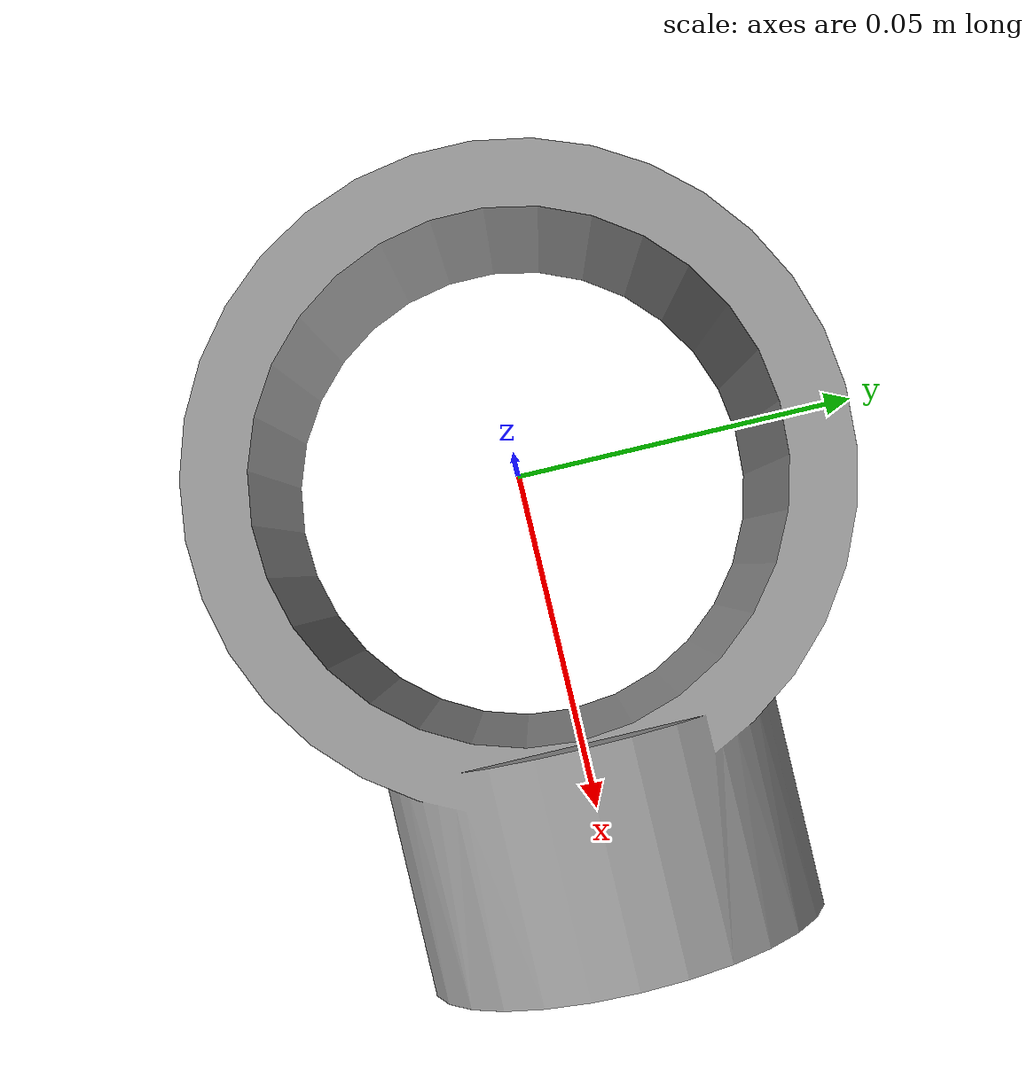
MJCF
<mujoco model="wrist_adapter">
    <compiler angle="radian" meshdir="assets"/>

  <asset>
    <mesh name="wrist_adapter_mesh" file="hand_mounting_franka.stl" scale="0.001 0.001 0.001"/>
  </asset>

  <worldbody>
    <body name="wrist_adapter">

      <inertial mass="0.29960"
                pos="0.02450 0.0 -0.02650"
                fullinertia="2.929e-4 5.386e-4 6.822e-4 0.0 0.0 0.0"/>

      <!-- collision geometry -->
      <geom name="wrist_adapter_col"
            type="mesh"
            mesh="wrist_adapter_mesh"
            contype="1"
            conaffinity="1"
            rgba="0.6 0.6 0.6 1"/>

      <!-- visual geometry (same mesh, no collision) -->
      <geom name="wrist_adapter_vis"
            type="mesh"
            mesh="wrist_adapter_mesh"
            contype="0"
            conaffinity="0"
            rgba="0.7 0.7 0.7 1"/>

    </body>
  </worldbody>

</mujoco>
